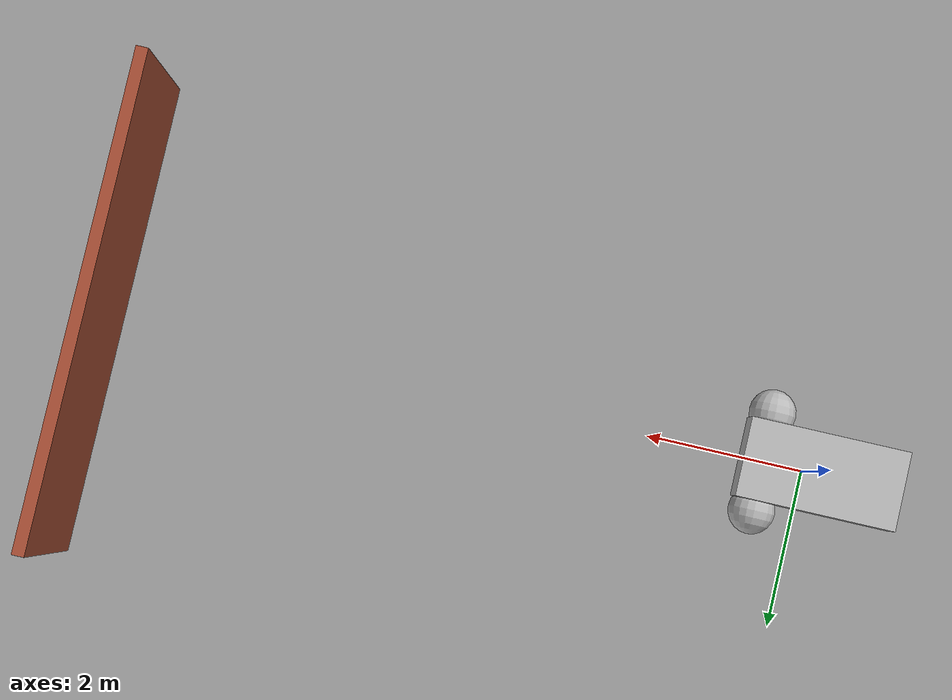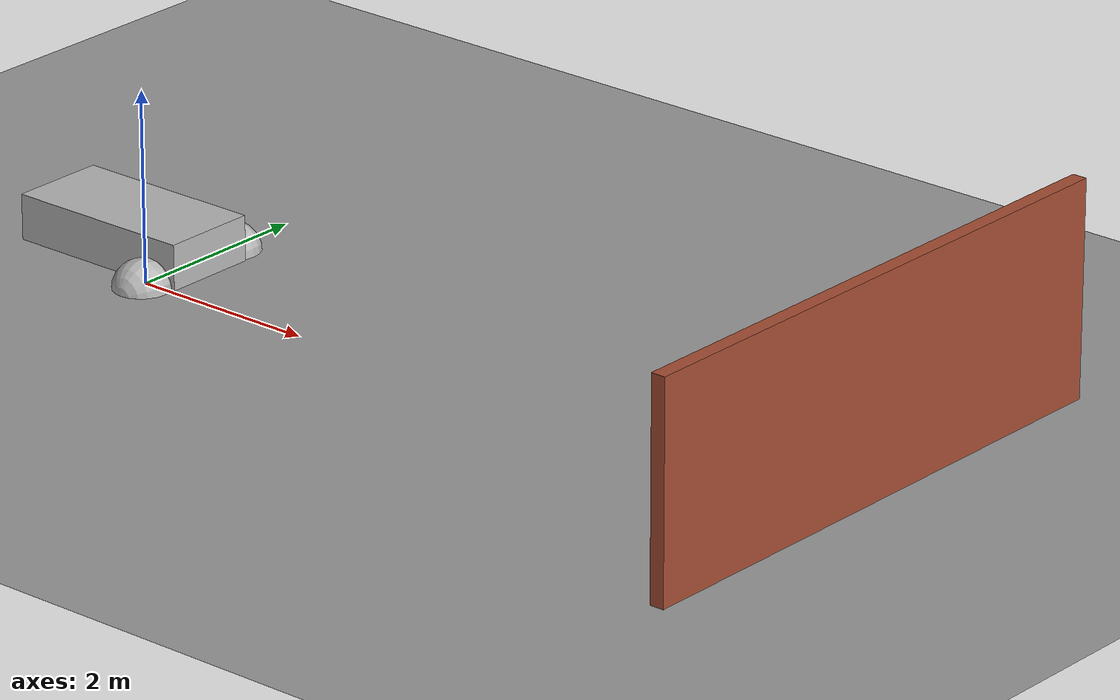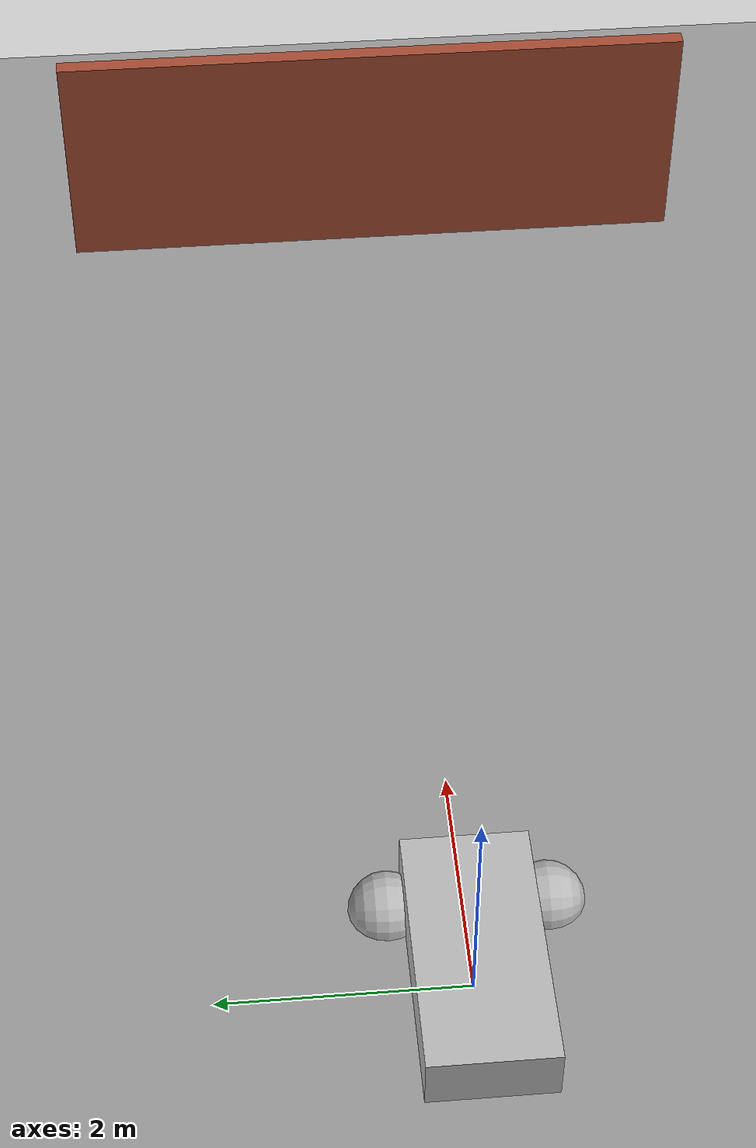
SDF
<?xml version="1.0"?>
<sdf version="1.6">
  <world name="default">

    <include>
      <uri>model://ground_plane</uri>
    </include>

    <include>
      <uri>model://sun</uri>
    </include>

    <model name='vehicle'>
      <pose>0 0 0.325 0 -0 0</pose>

      <link name='chassis'>
        <pose>-0.151427 -0 0.175 0 -0 0</pose>
        <inertial>
          <mass>1.14395</mass>
          <inertia>
            <ixx>0.126164</ixx>
            <ixy>0</ixy>
            <ixz>0</ixz>
            <iyy>0.416519</iyy>
            <iyz>0</iyz>
            <izz>0.481014</izz>
          </inertia>
        </inertial>
        <visual name='visual'>
          <geometry>
            <box>
              <size>2.01142 1 0.568726</size>
            </box>
          </geometry>
        </visual>
        <collision name='collision'>
          <geometry>
            <box>
              <size>2.01142 1 0.568726</size>
            </box>
          </geometry>
        </collision>
      </link>

      <link name='left_wheel'>
        <pose>0.554283 0.625029 -0.025 -1.5707 0 0</pose>
        <inertial>
          <mass>2</mass>
          <inertia>
            <ixx>0.145833</ixx>
            <ixy>0</ixy>
            <ixz>0</ixz>
            <iyy>0.145833</iyy>
            <iyz>0</iyz>
            <izz>0.125</izz>
          </inertia>
        </inertial>
        <visual name='visual'>
          <geometry>
            <sphere>
              <radius>0.3</radius>
            </sphere>
          </geometry>
        </visual>
        <collision name='collision'>
          <geometry>
            <sphere>
              <radius>0.3</radius>
            </sphere>
          </geometry>
          <surface>
            <friction>
              <ode>
                <mu>1</mu>
                <mu2>1</mu2>
                <slip1>0</slip1>
                <slip2>0</slip2>
              </ode>
            </friction>
            <contact>
              <ode>
                <soft_cfm>0</soft_cfm>
                <soft_erp>0.2</soft_erp>
                <kp>1e+13</kp>
                <kd>1</kd>
                <max_vel>0.01</max_vel>
                <min_depth>0.01</min_depth>
              </ode>
            </contact>
          </surface>
        </collision>
      </link>

      <link name='right_wheel'>
        <pose>0.554282 -0.625029 -0.025 -1.5707 0 0</pose>
        <inertial>
          <mass>2</mass>
          <inertia>
            <ixx>0.145833</ixx>
            <ixy>0</ixy>
            <ixz>0</ixz>
            <iyy>0.145833</iyy>
            <iyz>0</iyz>
            <izz>0.125</izz>
          </inertia>
        </inertial>
        <visual name='visual'>
          <geometry>
            <sphere>
              <radius>0.3</radius>
            </sphere>
          </geometry>
        </visual>
        <collision name='collision'>
          <geometry>
            <sphere>
              <radius>0.3</radius>
            </sphere>
          </geometry>
          <surface>
            <friction>
              <ode>
                <mu>1</mu>
                <mu2>1</mu2>
                <slip1>0</slip1>
                <slip2>0</slip2>
              </ode>
            </friction>
            <contact>
              <ode>
                <soft_cfm>0</soft_cfm>
                <soft_erp>0.2</soft_erp>
                <kp>1e+13</kp>
                <kd>1</kd>
                <max_vel>0.01</max_vel>
                <min_depth>0.01</min_depth>
              </ode>
            </contact>
          </surface>
        </collision>
      </link>

      <link name='caster'>
        <pose>-0.957138 -0 -0.125 0 -0 0</pose>
        <inertial>
          <mass>1</mass>
          <inertia>
            <ixx>0.1</ixx>
            <ixy>0</ixy>
            <ixz>0</ixz>
            <iyy>0.1</iyy>
            <iyz>0</iyz>
            <izz>0.1</izz>
          </inertia>
        </inertial>
        <visual name='visual'>
          <geometry>
            <sphere>
              <radius>0.2</radius>
            </sphere>
          </geometry>
        </visual>
        <collision name='collision'>
          <geometry>
            <sphere>
              <radius>0.2</radius>
            </sphere>
          </geometry>
        </collision>
      </link>

      <joint name='left_wheel_joint' type='revolute'>
        <parent>chassis</parent>
        <child>left_wheel</child>
        <axis>
          <xyz>0 0 1</xyz>
          <limit>
            <lower>-1.79769e+308</lower>
            <upper>1.79769e+308</upper>
          </limit>
        </axis>
      </joint>

      <joint name='right_wheel_joint' type='revolute'>
        <parent>chassis</parent>
        <child>right_wheel</child>
        <axis>
          <xyz>0 0 1</xyz>
          <limit>
            <lower>-1.79769e+308</lower>
            <upper>1.79769e+308</upper>
          </limit>
        </axis>
      </joint>

      <joint name='caster_wheel' type='ball'>
        <parent>chassis</parent>
        <child>caster</child>
      </joint>

      <plugin name='diff_drive' filename='libgazebo_ros_diff_drive.so'>

        <ros>
          <namespace>/demo</namespace>
          <remapping>cmd_vel:=cmd_demo</remapping>
          <remapping>odom:=odom_demo</remapping>
        </ros>

        <!-- wheels -->
        <left_joint>left_wheel_joint</left_joint>
        <right_joint>right_wheel_joint</right_joint>

        <!-- kinematics -->
        <wheel_separation>1.25</wheel_separation>
        <wheel_diameter>0.6</wheel_diameter>

        <!-- limits -->
        <max_wheel_torque>20</max_wheel_torque>
        <max_wheel_acceleration>1.0</max_wheel_acceleration>

        <!-- output -->
        <publish_odom>true</publish_odom>
        <publish_odom_tf>true</publish_odom_tf>
        <publish_wheel_tf>true</publish_wheel_tf>

        <odometry_frame>odom_demo</odometry_frame>
        <robot_base_frame>chassis</robot_base_frame>

      </plugin>

  <!-- ****************************** LIDAR *****************************    -->
  <link name="lidar_link">
    <inertial>
      <pose>0.215 0 0.13 0 0 0</pose>
      <inertia>
        <ixx>0.001</ixx>
        <ixy>0.000</ixy>
        <ixz>0.000</ixz>
        <iyy>0.001</iyy>
        <iyz>0.000</iyz>
        <izz>0.001</izz>
      </inertia>
      <mass>0.114</mass>
    </inertial>

    <collision name="lidar_collision">
      <pose>0.215 0 0.13 0 0 0</pose>
      <geometry>
        <cylinder>
          <radius>0.0508</radius>
          <length>0.18</length>
        </cylinder>
      </geometry>
    </collision>

    <visual name="lidar_visual">
      <pose>0.215 0 0.13 0 0 0</pose>
      <geometry>
        <cylinder>
          <radius>0.0508</radius>
          <length>0.18</length>
        </cylinder>
      </geometry>
      <material>
        <ambient>0.0 0.0 0.0 1.0</ambient>
        <diffuse>0.0 0.0 0.0 1.0</diffuse>
        <specular>0.0 0.0 0.0 1.0</specular>
        <emissive>0.0 0.0 0.0 1.0</emissive>
      </material>
    </visual>

    <sensor name="lidar" type="ray">
      <pose>0.215 0 0.5 0 0 0</pose>
      <always_on>true</always_on>
      <visualize>true</visualize>
      <update_rate>5</update_rate>
      <ray>
        <scan>
          <horizontal>
            <samples>360</samples>
            <resolution>1.00000</resolution>
            <min_angle>0.000000</min_angle>
            <max_angle>6.280000</max_angle>
          </horizontal>
        </scan>
        <range>
          <min>0.120000</min>
          <max>3.5</max>
          <resolution>0.015000</resolution>
        </range>
        <noise>
          <type>gaussian</type>
          <mean>0.0</mean>
          <stddev>0.01</stddev>
        </noise>
      </ray>
      <plugin name="scan" filename="libgazebo_ros_ray_sensor.so">
        <ros>
          <remapping>~/out:=scan</remapping>
        </ros>
        <output_type>sensor_msgs/LaserScan</output_type>
        <frame_name>lidar_link</frame_name>
      </plugin>
    </sensor>
  </link>

  <joint name="lidar_joint" type="fixed">
    <parent>chassis</parent>
    <child>lidar_link</child>
    <pose>0 0 0 0 0 0</pose>
  </joint>

      <!-- wall -->

      <link name='link'>
        <collision name='collision'>
          <geometry>
            <plane>
              <normal>0 0 1</normal>
              <size>100 100</size>
            </plane>
          </geometry>
          <surface>
            <contact>
              <collide_bitmask>65535</collide_bitmask>
              <ode/>
            </contact>
            <friction>
              <ode>
                <mu>100</mu>
                <mu2>50</mu2>
              </ode>
              <torsional>
                <ode/>
              </torsional>
            </friction>
            <bounce/>
          </surface>
          <max_contacts>10</max_contacts>
        </collision>
        <visual name='visual'>
          <cast_shadows>0</cast_shadows>
          <geometry>
            <plane>
              <normal>0 0 1</normal>
              <size>100 100</size>
            </plane>
          </geometry>
          <material>
            <script>
              <uri>file://media/materials/scripts/gazebo.material</uri>
              <name>Gazebo/Grey</name>
            </script>
          </material>
        </visual>
        <self_collide>0</self_collide>
        <enable_wind>0</enable_wind>
        <kinematic>0</kinematic>
      </link>
    </model>
    <physics type='ode'>
      <real_time_update_rate>1000</real_time_update_rate>
      <max_step_size>0.001</max_step_size>
      <real_time_factor>1</real_time_factor>
      <ode>
        <solver>
          <type>quick</type>
          <iters>150</iters>
          <precon_iters>0</precon_iters>
          <sor>1.4</sor>
          <use_dynamic_moi_rescaling>1</use_dynamic_moi_rescaling>
        </solver>
        <constraints>
          <cfm>1e-05</cfm>
          <erp>0.2</erp>
          <contact_max_correcting_vel>2000</contact_max_correcting_vel>
          <contact_surface_layer>0.01</contact_surface_layer>
        </constraints>
      </ode>
    </physics>
    <gravity>0 0 -9.8</gravity>
    <magnetic_field>6e-06 2.3e-05 -4.2e-05</magnetic_field>
    <atmosphere type='adiabatic'/>
    <wind/>
    <spherical_coordinates>
      <surface_model>EARTH_WGS84</surface_model>
      <latitude_deg>0</latitude_deg>
      <longitude_deg>0</longitude_deg>
      <elevation>0</elevation>
      <heading_deg>0</heading_deg>
    </spherical_coordinates>
    <model name='wall_to_not_run_into'>
      <pose>0.869051 0.031728 0 0 -0 0</pose>
      <link name='Wall_8'>
        <collision name='Wall_8_Collision'>
          <geometry>
            <box>
              <size>6 0.15 2.5</size>
            </box>
          </geometry>
          <pose>0 0 1.25 0 -0 0</pose>
          <surface>
            <contact>
              <ode/>
            </contact>
            <bounce/>
            <friction>
              <torsional>
                <ode/>
              </torsional>
              <ode/>
            </friction>
          </surface>
          <max_contacts>10</max_contacts>
        </collision>
        <visual name='Wall_8_Visual'>
          <pose>0 0 1.25 0 -0 0</pose>
          <geometry>
            <box>
              <size>6 0.15 2.5</size>
            </box>
          </geometry>
          <material>
            <script>
              <uri>file://media/materials/scripts/gazebo.material</uri>
              <name>Gazebo/Bricks</name>
            </script>
            <ambient>1 1 1 1</ambient>
          </material>
          <meta>
            <layer>0</layer>
          </meta>
        </visual>
        <pose>8 0 0 0 -0 -1.5708</pose>
        <self_collide>0</self_collide>
        <enable_wind>0</enable_wind>
        <kinematic>0</kinematic>
      </link>

    </model>

    <gui fullscreen='0'>
      <camera name='user_camera'>
        <pose>-7.8146 -18.4908 6.30937 -0 0.267643 1.22019</pose>
        <view_controller>orbit</view_controller>
        <projection_type>perspective</projection_type>
      </camera>
    </gui>

  </world>
</sdf>
